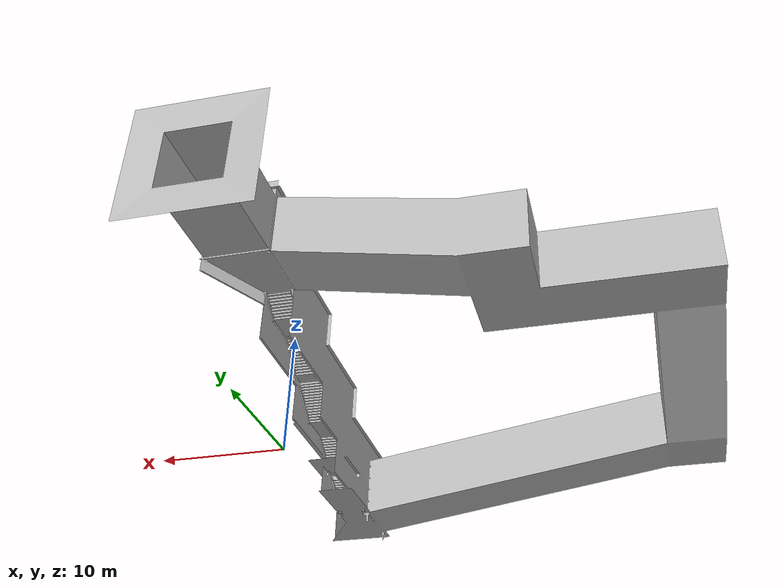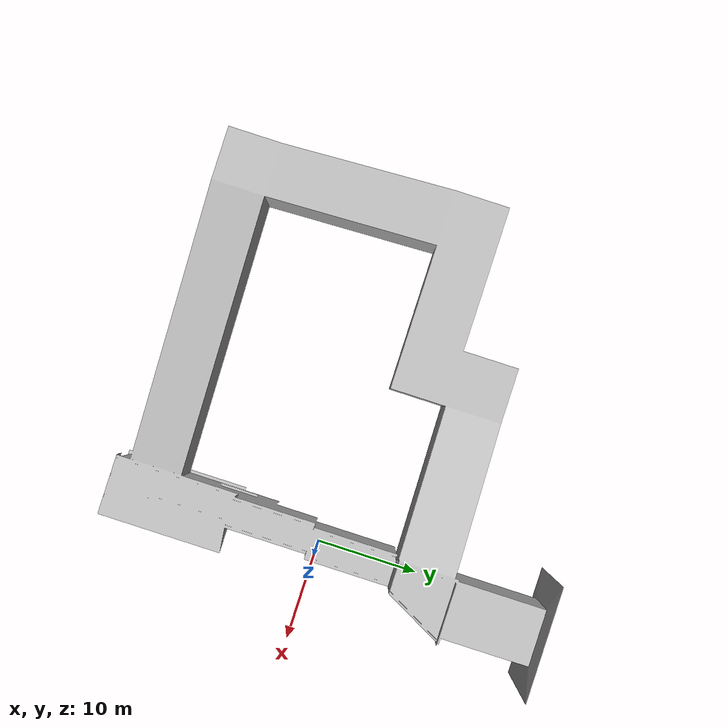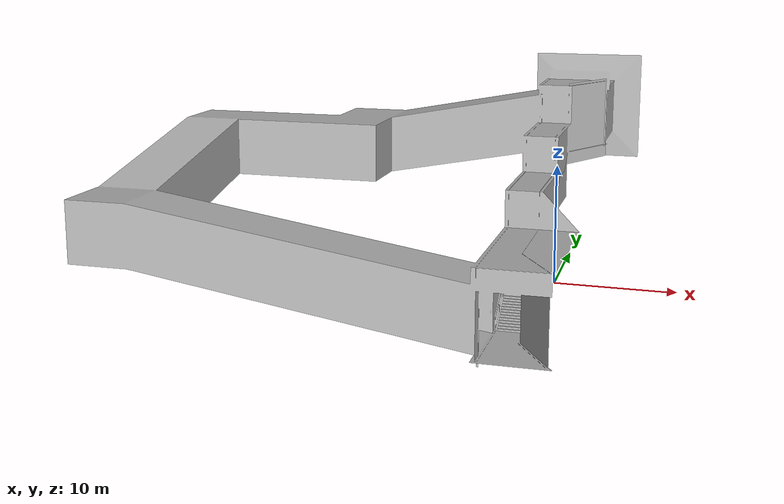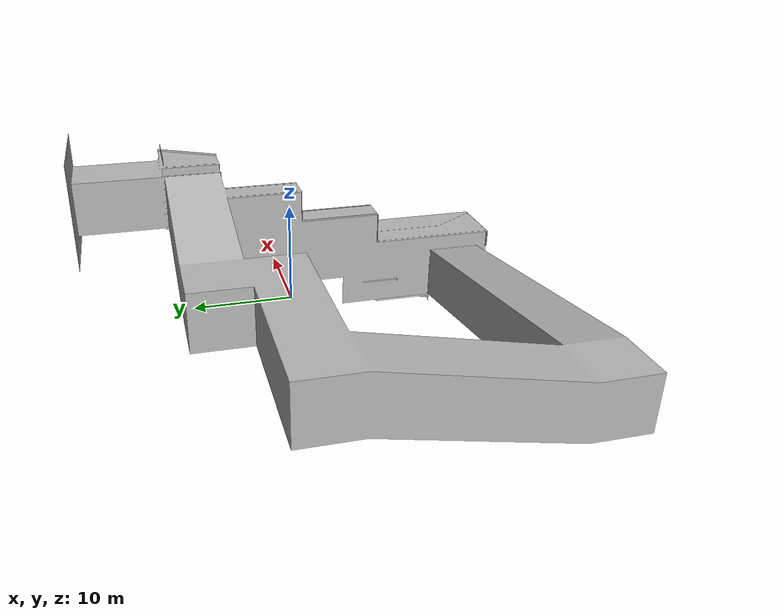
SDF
<?xml version="1.0"?>
<sdf version="1.6">
    <model name="Urban Stairwell Platform Centered">
        <static>true</static>
        <link name="base">
            <pose>0 0 -1.70 0 0 0</pose>
            <collision name="collision">
                <geometry>
                    <mesh>
                        <uri>meshes/stairwell_platform.dae</uri>
                    </mesh>
                </geometry>
            </collision>
            <visual name="visual">
                <geometry>
                    <mesh>
                        <uri>meshes/stairwell_platform.dae</uri>
                    </mesh>
                </geometry>
            </visual>
        </link>
        <plugin filename="libignition-gazebo-performer-detector-system.so" name="ignition::gazebo::systems::PerformerDetector">
            <topic>/subt_performer_detector</topic>
            <pose>0 -18 3 0 0 0</pose>
            <geometry>
                <box>
                    <size>4 4 6</size>
                </box>
            </geometry>
            <header_data>
                <key>type</key>
                <value>decision</value>
            </header_data>
        </plugin>
        <plugin filename="libignition-gazebo-performer-detector-system.so" name="ignition::gazebo::systems::PerformerDetector">
            <topic>/subt_performer_detector</topic>
            <pose>0 10 13 0 0 0</pose>
            <geometry>
                <box>
                    <size>4 4 6</size>
                </box>
            </geometry>
            <header_data>
                <key>type</key>
                <value>decision</value>
            </header_data>
        </plugin>
        <plugin filename="libignition-gazebo-performer-detector-system.so" name="ignition::gazebo::systems::PerformerDetector">
            <topic>/subt_performer_detector</topic>
            <pose>0 -4 8 0 0 0</pose>
            <geometry>
                <box>
                    <size>6 24 16</size>
                </box>
            </geometry>
            <header_data>
                <key>type</key>
                <value>stair</value>
            </header_data>
        </plugin>
        <plugin filename="libignition-gazebo-performer-detector-system.so" name="ignition::gazebo::systems::PerformerDetector">
            <topic>/subt_performer_detector</topic>
            <pose>-19 -4 8 0 0 0</pose>
            <geometry>
                <box>
                    <size>32 32 16</size>
                </box>
            </geometry>
            <header_data>
                <key>type</key>
                <value>elevation</value>
            </header_data>
        </plugin>
    </model>
</sdf>
